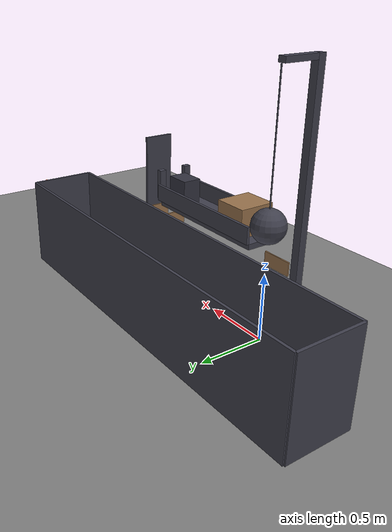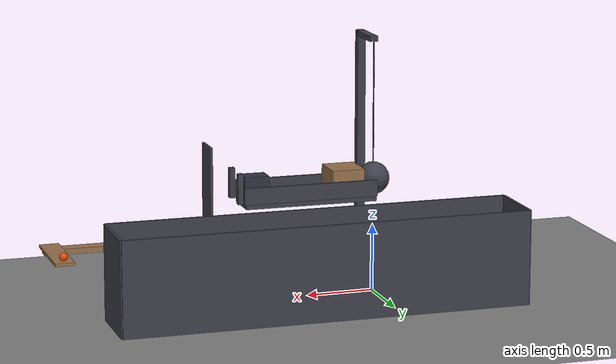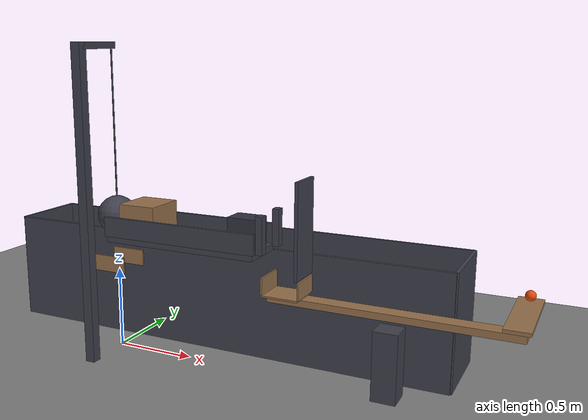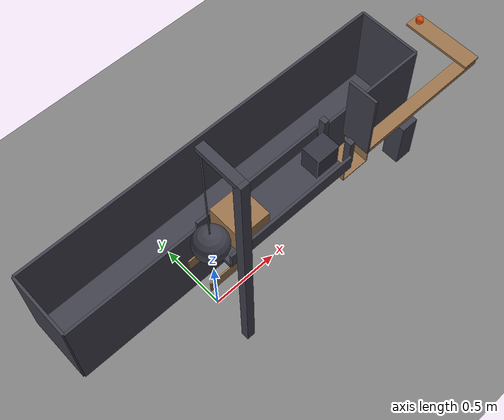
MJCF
<mujoco model="pendulum_cart_and_seesaw">
  <compiler angle="radian"/>
  <option timestep="0.002"/>
  <worldbody>
    <geom name="floor" type="plane" size="6 6 0.1" friction="0.8 0.005 0.002"/>
    <geom name="pendulum_stand_arm" type="box" pos="0 -0.15 1.875" size="0.03 0.15 0.02" solref="0.01 1" rgba="0.25 0.25 0.3 1"/>
    <geom name="pendulum_stand_post" type="box" pos="0 -0.3 0.9475" size="0.03 0.03 0.9475" solref="0.01 1" rgba="0.25 0.25 0.3 1"/>
    <body name="pendulum" pos="0 0 1.85">
      <joint name="pivot" type="hinge" pos="0 0 0" axis="0 1 0" damping="0.001"/>
      <geom name="pendulum_bob" type="sphere" pos="0 0 -1" size="0.12" mass="4" solref="0.01 1" rgba="0.25 0.25 0.3 1"/>
      <geom name="pendulum_rod" type="capsule" size="0.005" fromto="0 0 0 0 0 -0.88" mass="0.02" solref="0.01 1" rgba="0.25 0.25 0.3 1"/>
    </body>
    <body name="track">
      <geom name="track" type="box" pos="0.51 0 0.73" size="0.49 0.14 0.02" friction="0.015 0.005 0.0001" rgba="0.25 0.25 0.3 1"/>
    </body>
    <body name="left guide">
      <geom name="left guide" type="box" pos="0.52 0.15 0.81" size="0.5 0.01 0.06" friction="0.015 0.005 0.0001" rgba="0.25 0.25 0.3 1"/>
    </body>
    <body name="right guide">
      <geom name="right guide" type="box" pos="0.52 -0.15 0.81" size="0.5 0.01 0.06" friction="0.015 0.005 0.0001" rgba="0.25 0.25 0.3 1"/>
    </body>
    <body name="cart" pos="0.23 0 0.85">
      <freejoint/>
      <geom name="cart" type="box" pos="0 0 0" size="0.12 0.13 0.1" mass="1" friction="0.015 0.005 0.0001" solref="0.01 1" rgba="0.6 0.45 0.3 1"/>
    </body>
    <body name="weight" pos="0.9 0 0.84">
      <freejoint/>
      <geom name="weight" type="box" pos="0 0 0" size="0.09 0.07 0.09" mass="1" friction="0.015 0.005 0.0001" solref="0.01 1" rgba="0.2 0.2 0.25 1"/>
    </body>
    <body name="left cart stop">
      <geom name="left cart stop" type="box" pos="1.04 0.11 0.86" size="0.02 0.025 0.11" solref="0.01 1" rgba="0.25 0.25 0.3 1"/>
    </body>
    <body name="right cart stop">
      <geom name="right cart stop" type="box" pos="1.04 -0.11 0.86" size="0.02 0.025 0.11" solref="0.01 1" rgba="0.25 0.25 0.3 1"/>
    </body>
    <body name="weight arrest wall">
      <geom name="weight arrest wall" type="box" pos="1.25 0 0.895" size="0.01 0.11 0.275" friction="0.01 0.005 0.0001" solref="0.01 1" rgba="0.25 0.25 0.3 1"/>
    </body>
    <body name="lever stand">
      <geom name="lever stand" type="box" pos="1.75 0 0.2" size="0.07 0.07 0.2" rgba="0.25 0.25 0.3 1"/>
    </body>
    <body name="seesaw" pos="1.75 0 0.48">
      <joint name="seesaw_hinge" type="hinge" pos="0 0 0" axis="0 1 0" limited="true" range="-0.610865 0" damping="0.015"/>
      <geom name="seesaw" type="box" pos="0 0 0" size="0.7 0.05 0.02" mass="1.2" friction="0.8 0.005 0.0001" solref="0.01 1" rgba="0.6 0.45 0.3 1"/>
      <geom name="weight cradle" type="box" pos="-0.6 0 0.025" size="0.11 0.1 0.005" mass="0.03" friction="0.8 0.005 0.0001" solref="0.01 1" rgba="0.6 0.45 0.3 1"/>
      <geom name="cradle near wall" type="box" pos="-0.71 0 0.08" size="0.005 0.1 0.05" mass="0.01" friction="0.8 0.005 0.0001" solref="0.01 1" rgba="0.6 0.45 0.3 1"/>
      <geom name="cradle far wall" type="box" pos="-0.49 0 0.08" size="0.005 0.1 0.05" mass="0.01" friction="0.8 0.005 0.0001" solref="0.01 1" rgba="0.6 0.45 0.3 1"/>
      <geom name="cradle left wall" type="box" pos="-1.75 0.1 0.08" size="0.11 0.005 0.05" mass="0.005" friction="0.8 0.005 0.0001" solref="0.01 1" rgba="0.6 0.45 0.3 1"/>
      <geom name="cradle right wall" type="box" pos="-1.75 -0.1 0.08" size="0.11 0.005 0.05" mass="0.005" friction="0.8 0.005 0.0001" solref="0.01 1" rgba="0.6 0.45 0.3 1"/>
      <geom name="launch crosspiece" type="box" pos="0.65 0.23 0.03" size="0.07 0.28 0.01" mass="0.1" friction="0.8 0.005 0.0001" solref="0.01 1" rgba="0.6 0.45 0.3 1"/>
    </body>
    <body name="ball" pos="2.4 0.45 0.55">
      <freejoint/>
      <geom name="ball" type="sphere" pos="0 0 0" size="0.03" mass="0.03" condim="6" friction="0.8 0.02 0.01" solref="0.01 1" rgba="0.9 0.3 0.05 1"/>
    </body>
    <body name="cup">
      <geom name="cup_base" type="box" pos="0.55 0.45 0.01" size="1.5 0.25 0.01" friction="1 0.03 0.02" solref="0.01 1" rgba="0.25 0.25 0.3 1"/>
      <geom name="cup_near_wall" type="box" pos="-0.95 0.45 0.35" size="0.01 0.25 0.35" friction="1 0.03 0.02" solref="0.01 1" rgba="0.25 0.25 0.3 1"/>
      <geom name="cup_far_wall" type="box" pos="2.05 0.45 0.35" size="0.01 0.25 0.35" friction="1 0.03 0.02" solref="0.01 1" rgba="0.25 0.25 0.3 1"/>
      <geom name="cup_left_wall" type="box" pos="0.55 0.7 0.35" size="1.5 0.01 0.35" friction="1 0.03 0.02" solref="0.01 1" rgba="0.25 0.25 0.3 1"/>
      <geom name="cup_right_wall" type="box" pos="0.55 0.2 0.35" size="1.5 0.01 0.35" friction="1 0.03 0.02" solref="0.01 1" rgba="0.25 0.25 0.3 1"/>
    </body>
  </worldbody>
  <keyframe>
    <key name="start" qpos="1.15928 0.23 0 0.85 1 0 0 0 0.9 0 0.84 1 0 0 0 0 2.4 0.45 0.55 1 0 0 0" qvel="0 0 0 0 0 0 0 0 0 0 0 0 0 0 0 0 0 0 0 0"/>
  </keyframe>
</mujoco>
